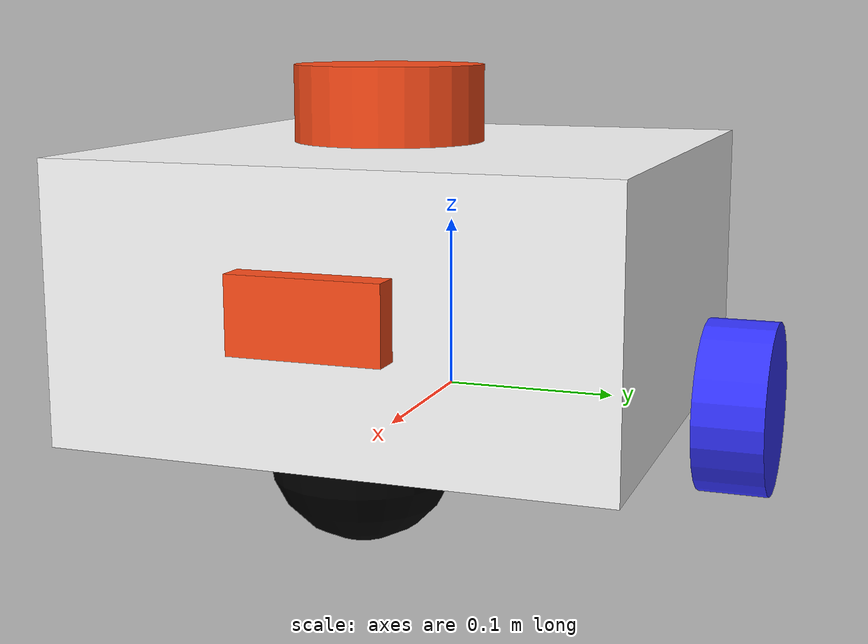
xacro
<?xml version="1.0"?>
<robot xmlns:xacro="http://www.ros.org/wiki/xacro" name="industrial_inspection_robot">

    <material name="white">
        <color rgba="1 1 1 1"/>
    </material>
    <material name="orange">
        <color rgba="1 0.3 0.1 1"/>
    </material>
    <material name="blue">
        <color rgba="0.2 0.2 1 1"/>
    </material>
    <material name="black">
        <color rgba="0 0 0 1"/>
    </material>

    <link name="base_link"></link>

    <joint name="chassis_joint" type="fixed">
        <parent link="base_link"/>
        <child link="chassis"/>
        <origin xyz="-0.1 0 0"/>
    </joint>

    <link name="chassis">
        <visual>
            <origin xyz="0.15 0 0.075"/>
            <geometry>
                <box size="0.3 0.3 0.15"/>
            </geometry>
            <material name="white"/>
        </visual>
        <collision>
            <origin xyz="0.15 0 0.075"/>
            <geometry>
                <box size="0.3 0.3 0.15"/>
            </geometry>
        </collision>
        <inertial>
            <origin xyz="0.15 0 0.075" rpy="0 0 0"/>
            <mass value="5.0"/>
            <inertia ixx="0.046875" ixy="0.0" ixz="0.0" iyy="0.046875" iyz="0.0" izz="0.075"/>
        </inertial>
    </link>

    <gazebo reference="chassis">
        <material>Gazebo/White</material>
    </gazebo>

    <xacro:include filename="gazebo_control.xacro" />
    <xacro:include filename="lidar.xacro" />
    <xacro:include filename="camera.xacro" />

</robot>

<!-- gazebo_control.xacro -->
<robot xmlns:xacro="http://www.ros.org/wiki/xacro">

    <joint name="left_wheel_joint" type="continuous">
        <parent link="base_link"/>
        <child link="left_wheel"/>
        <origin xyz="0 0.175 0" rpy="-${pi/2} 0 0" />
        <axis xyz="0 0 1"/>
    </joint>

    <link name="left_wheel">
        <visual>
            <geometry>
                <cylinder radius="0.05" length="0.04"/>
            </geometry>
            <material name="blue"/>
        </visual>
        <collision>
            <geometry>
                <cylinder radius="0.05" length="0.04"/>
            </geometry>
        </collision>
        <inertial>
            <mass value="0.1"/>
            <inertia ixx="0.000075" ixy="0.0" ixz="0.0" iyy="0.000075" iyz="0.0" izz="0.000125"/>
        </inertial>
    </link>

    <gazebo reference="left_wheel">
        <material>Gazebo/Blue</material>
    </gazebo>

    <joint name="right_wheel_joint" type="continuous">
        <parent link="base_link"/>
        <child link="right_wheel"/>
        <origin xyz="0 -0.175 0" rpy="${pi/2} 0 0" />
        <axis xyz="0 0 -1"/>
    </joint>

    <link name="right_wheel">
        <visual>
            <geometry>
                <cylinder radius="0.05" length="0.04"/>
            </geometry>
            <material name="blue"/>
        </visual>
        <collision>
            <geometry>
                <cylinder radius="0.05" length="0.04"/>
            </geometry>
        </collision>
        <inertial>
            <mass value="0.1"/>
            <inertia ixx="0.000075" ixy="0.0" ixz="0.0" iyy="0.000075" iyz="0.0" izz="0.000125"/>
        </inertial>
    </link>

    <gazebo reference="right_wheel">
        <material>Gazebo/Blue</material>
    </gazebo>

    <joint name="caster_wheel_joint" type="fixed">
        <parent link="chassis"/>
        <child link="caster_wheel"/>
        <origin xyz="0.24 0 0"/>
    </joint>

    <link name="caster_wheel">
        <visual>
            <geometry>
                <sphere radius="0.05"/>
            </geometry>
            <material name="black"/>
        </visual>
        <collision>
            <geometry>
                <sphere radius="0.05"/>
            </geometry>
        </collision>
        <inertial>
            <mass value="0.1"/>
            <inertia ixx="0.0001" ixy="0.0" ixz="0.0" iyy="0.0001" iyz="0.0" izz="0.0001"/>
        </inertial>
    </link>

    <gazebo reference="caster_wheel">
        <material>Gazebo/Black</material>
        <mu1 value="0.001"/>
        <mu2 value="0.001"/>
    </gazebo>

    <gazebo>
        <plugin filename="gz-sim-diff-drive-system" name="gz::sim::systems::DiffDrive">
            <left_joint>left_wheel_joint</left_joint>
            <right_joint>right_wheel_joint</right_joint>
            <wheel_separation>0.35</wheel_separation>
            <wheel_radius>0.05</wheel_radius>
            <odom_publish_frequency>30</odom_publish_frequency>
            <topic>/cmd_vel</topic>
            <odom_topic>/odom</odom_topic>
            <tf_topic>/tf</tf_topic>
            <frame_id>odom</frame_id>
            <child_frame_id>base_link</child_frame_id>
        </plugin>
        <plugin filename="gz-sim-joint-state-publisher-system" name="gz::sim::systems::JointStatePublisher">
            <topic>/joint_states</topic>
        </plugin>
    </gazebo>

</robot>

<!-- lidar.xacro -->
<robot xmlns:xacro="http://www.ros.org/wiki/xacro">

    <joint name="laser_joint" type="fixed">
        <parent link="chassis"/>
        <child link="laser_frame"/>
        <origin xyz="0.2 0 0.175" rpy="0 0 0"/>
    </joint>

    <link name="laser_frame">
        <visual>
            <geometry>
                <cylinder radius="0.05" length="0.04"/>
            </geometry>
            <material name="orange"/>
        </visual>
        <collision>
            <geometry>
                <cylinder radius="0.05" length="0.04"/>
            </geometry>
        </collision>
        <inertial>
            <mass value="0.1"/>
            <inertia ixx="0.000075" ixy="0.0" ixz="0.0" iyy="0.000075" iyz="0.0" izz="0.000125"/>
        </inertial>
    </link>

    <gazebo reference="laser_frame">
        <material>Gazebo/Orange</material>
        <sensor name="laser" type="gpu_lidar">
            <pose>0 0 0 0 0 0</pose>
            <topic>scan</topic>
            <update_rate>10</update_rate>
            <ray>
                <scan>
                    <horizontal>
                        <samples>360</samples>
                        <resolution>1</resolution>
                        <min_angle>-3.141592</min_angle>
                        <max_angle>3.141592</max_angle>
                    </horizontal>
                </scan>
                <range>
                    <min>0.3</min>
                    <max>12.0</max>
                    <resolution>0.01</resolution>
                </range>
            </ray>
            <always_on>1</always_on>
            <visualize>true</visualize>
        </sensor>
    </gazebo>

</robot>

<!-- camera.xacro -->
<robot xmlns:xacro="http://www.ros.org/wiki/xacro">

    <joint name="camera_joint" type="fixed">
        <parent link="chassis"/>
        <child link="camera_link"/>
        <origin xyz="0.3 0 0.08" rpy="0 0 0"/>
    </joint>

    <link name="camera_link">
        <visual>
            <geometry>
                <box size="0.03 0.08 0.04"/>
            </geometry>
            <material name="orange"/>
        </visual>
        <collision>
            <geometry>
                <box size="0.03 0.08 0.04"/>
            </geometry>
        </collision>
        <inertial>
            <mass value="0.05"/>
            <inertia ixx="0.00001" ixy="0.0" ixz="0.0" iyy="0.00001" iyz="0.0" izz="0.00001"/>
        </inertial>
    </link>

    <joint name="camera_optical_joint" type="fixed">
        <parent link="camera_link"/>
        <child link="camera_link_optical"/>
        <origin xyz="0 0 0" rpy="-${pi/2} 0 -${pi/2}"/>
    </joint>

    <link name="camera_link_optical"></link>

    <gazebo reference="camera_link">
        <material>Gazebo/Orange</material>
        <sensor name="camera" type="camera">
            <pose>0 0 0 0 0 0</pose>
            <update_rate>30</update_rate>
            <visualize>true</visualize>
            <topic>/camera/image_raw</topic>
            <camera>
                <horizontal_fov>1.089</horizontal_fov>
                <image>
                    <width>640</width>
                    <height>480</height>
                    <format>R8G8B8</format>
                </image>
                <clip>
                    <near>0.05</near>
                    <far>8.0</far>
                </clip>
            </camera>
        </sensor>
    </gazebo>

</robot>
